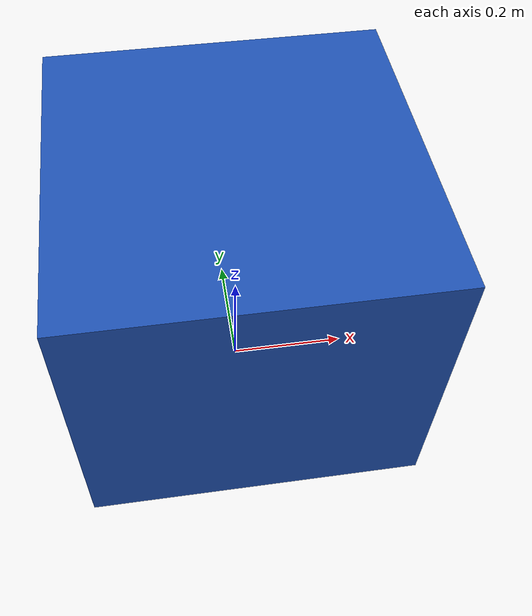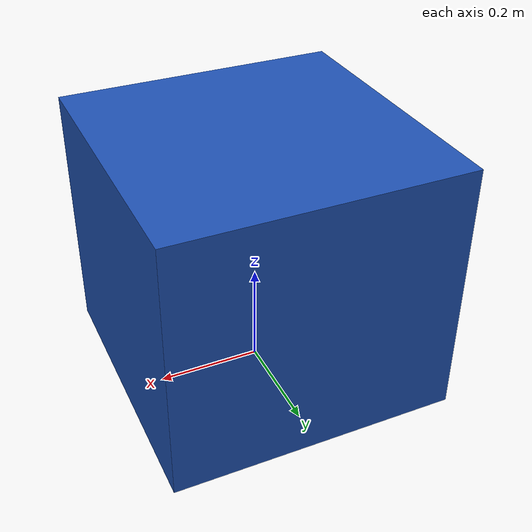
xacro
<?xml version="1.0"?>
<robot xmlns:xacro="http://www.ros.org/wiki/xacro" name="mid360_mobile_robot">
  <xacro:arg name="base_length" default="0.55"/>
  <xacro:arg name="base_width" default="0.55"/>
  <xacro:arg name="base_height" default="0.50"/>
  <xacro:arg name="lidar_x" default="0.0"/>
  <xacro:arg name="lidar_y" default="-0.11"/>
  <xacro:arg name="lidar_z" default="0.35"/>
  <xacro:arg name="lidar_roll" default="0.0"/>
  <xacro:arg name="lidar_pitch" default="0.0"/>
  <xacro:arg name="lidar_yaw" default="0.0"/>

  <link name="base_footprint"/>

  <link name="base_link">
    <visual>
      <origin xyz="0 0 ${0.5 * float($(arg base_height))}"/>
      <geometry>
        <box size="$(arg base_length) $(arg base_width) $(arg base_height)"/>
      </geometry>
      <material name="robot_blue"><color rgba="0.12 0.32 0.70 1.0"/></material>
    </visual>
    <collision>
      <origin xyz="0 0 ${0.5 * float($(arg base_height))}"/>
      <geometry>
        <box size="$(arg base_length) $(arg base_width) $(arg base_height)"/>
      </geometry>
    </collision>
  </link>
  <joint name="base_footprint_joint" type="fixed">
    <parent link="base_footprint"/>
    <child link="base_link"/>
  </joint>

  <link name="livox_frame">
    <visual>
      <geometry><cylinder radius="0.033" length="0.064"/></geometry>
      <material name="livox_black"><color rgba="0.08 0.08 0.08 1.0"/></material>
    </visual>
  </link>
  <joint name="livox_mount_joint" type="fixed">
    <parent link="base_link"/>
    <child link="livox_frame"/>
    <origin xyz="$(arg lidar_x) $(arg lidar_y) $(arg lidar_z)"
            rpy="$(arg lidar_roll) $(arg lidar_pitch) $(arg lidar_yaw)"/>
  </joint>
</robot>
